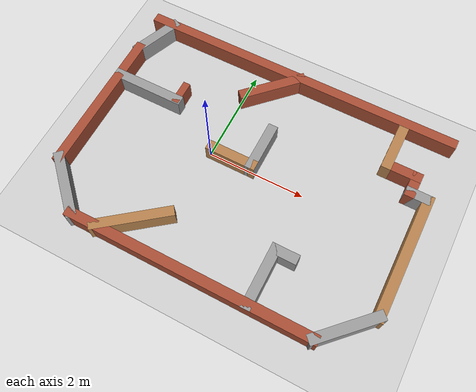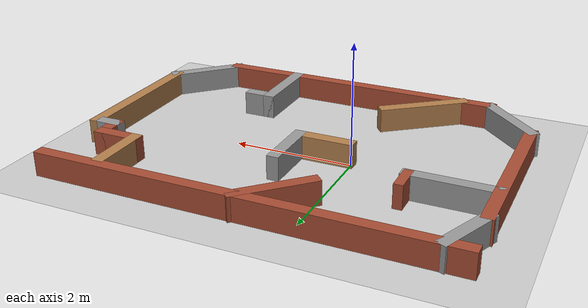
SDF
<sdf version="1.7">
 <world name="default">
  <light name="sun" type="directional">
   <pose>0 0 10 0 -0 0</pose>
   <diffuse>0.8 0.8 0.8 1</diffuse>
   <specular>0.2 0.2 0.2 1</specular>
   <attenuation>
    <range>1000</range>
    <constant>0.9</constant>
    <linear>0.01</linear>
    <quadratic>0.001</quadratic>
   </attenuation>
   <direction>-0.5 0.1 -0.9</direction>
   <spot><inner_angle>0</inner_angle><outer_angle>0</outer_angle><falloff>0</falloff></spot>
  </light>
  <model name="ground_plane">
   <static>1</static>
   <link name="link">
    <collision name="collision">
     <geometry><plane><normal>0 0 1</normal><size>100 100</size></plane></geometry>
     <surface>
      <contact><collide_bitmask>65535</collide_bitmask></contact>
      <friction><ode><mu>100</mu><mu2>50</mu2></ode></friction>
     </surface>
    </collision>
    <visual name="visual">
     <cast_shadows>0</cast_shadows>
     <geometry><plane><normal>0 0 1</normal><size>100 100</size></plane></geometry>
     <material>
      <script><uri>file://media/materials/scripts/gazebo.material</uri><name>Gazebo/Grey</name></script>
     </material>
    </visual>
   </link>
  </model>
  <gravity>0 0 -9.8</gravity>
  <magnetic_field>6e-06 2.3e-05 -4.2e-05</magnetic_field>
  <atmosphere type="adiabatic"/>
  <physics type="ode">
   <max_step_size>0.001</max_step_size>
   <real_time_factor>1</real_time_factor>
   <real_time_update_rate>0.0</real_time_update_rate>
   <max_step_size>0.003</max_step_size>
   <ode>
    <solver>
     <type>quick</type>
     <iters>150</iters>
     <precon_iters>0</precon_iters>
     <sor>1.400000</sor>
     <use_dynamic_moi_rescaling>1</use_dynamic_moi_rescaling>
    </solver>
    <constraints>
     <cfm>0.00001</cfm>
     <erp>0.2</erp>
     <contact_max_correcting_vel>2000.000000</contact_max_correcting_vel>
     <contact_surface_layer>0.01000</contact_surface_layer>
    </constraints>
   </ode>
  </physics>
  <scene><ambient>0.4 0.4 0.4 1</ambient><background>0.7 0.7 0.7 1</background><shadows>1</shadows></scene>
  <spherical_coordinates>
   <surface_model>EARTH_WGS84</surface_model>
   <latitude_deg>0</latitude_deg>
   <longitude_deg>0</longitude_deg>
   <elevation>0</elevation>
   <heading_deg>0</heading_deg>
  </spherical_coordinates>
  <model name="tie23_4">
   <pose>0.849589 -0.096676 0 0 -0 0</pose>
   <link name="Wall_13">
    <collision name="Wall_13_Collision">
     <geometry><box><size>1.11924 0.2 0.4</size></box></geometry>
     <pose>0 0 0.2 0 -0 0</pose>
    </collision>
    <visual name="Wall_13_Visual">
     <pose>0 0 0.2 0 -0 0</pose>
     <geometry><box><size>1.11924 0.2 0.4</size></box></geometry>
     <material>
      <script><uri>file://media/materials/scripts/gazebo.material</uri><name>Gazebo/Grey</name></script>
      <ambient>1 1 1 1</ambient>
     </material>
     <meta><layer>0</layer></meta>
    </visual>
    <pose>-3.125 1.875 0 0 -0 -1.9614</pose>
   </link>
   <link name="Wall_16">
    <collision name="Wall_16_Collision">
     <geometry><box><size>1.55 0.2 0.4</size></box></geometry>
     <pose>0 0 0.2 0 -0 0</pose>
    </collision>
    <visual name="Wall_16_Visual">
     <pose>0 0 0.2 0 -0 0</pose>
     <geometry><box><size>1.55 0.2 0.4</size></box></geometry>
     <material>
      <script><uri>file://media/materials/scripts/gazebo.material</uri><name>Gazebo/Grey</name></script>
      <ambient>1 1 1 1</ambient>
     </material>
     <meta><layer>0</layer></meta>
    </visual>
    <pose>-2.625 0.7 0 0 -0 0</pose>
   </link>
   <link name="Wall_17">
    <collision name="Wall_17_Collision">
     <geometry><box><size>0.5 0.15 0.4</size></box></geometry>
     <pose>0 0 0.2 0 -0 0</pose>
    </collision>
    <visual name="Wall_17_Visual">
     <pose>0 0 0.2 0 -0 0</pose>
     <geometry><box><size>0.5 0.15 0.4</size></box></geometry>
     <material>
      <script><uri>file://media/materials/scripts/gazebo.material</uri><name>Gazebo/Bricks</name></script>
      <ambient>1 1 1 1</ambient>
     </material>
     <meta><layer>0</layer></meta>
    </visual>
    <pose>-1.95 0.875 0 0 -0 1.5708</pose>
   </link>
   <link name="Wall_2">
    <collision name="Wall_2_Collision">
     <geometry><box><size>6.8 0.2 0.4</size></box></geometry>
     <pose>0 0 0.2 0 -0 0</pose>
    </collision>
    <visual name="Wall_2_Visual">
     <pose>0 0 0.2 0 -0 0</pose>
     <geometry><box><size>6.8 0.2 0.4</size></box></geometry>
     <material>
      <script><uri>file://media/materials/scripts/gazebo.material</uri><name>Gazebo/Bricks</name></script>
      <ambient>1 1 1 1</ambient>
     </material>
     <meta><layer>0</layer></meta>
    </visual>
    <pose>-0 2.3 0 0 -0 3.14159</pose>
   </link>
   <link name="Wall_22">
    <collision name="Wall_22_Collision">
     <geometry><box><size>1.40208 0.2 0.4</size></box></geometry>
     <pose>0 0 0.2 0 -0 0</pose>
    </collision>
    <visual name="Wall_22_Visual">
     <pose>0 0 0.2 0 -0 0</pose>
     <geometry><box><size>1.40208 0.2 0.4</size></box></geometry>
     <material>
      <script><uri>file://media/materials/scripts/gazebo.material</uri><name>Gazebo/Bricks</name></script>
      <ambient>1 1 1 1</ambient>
     </material>
     <meta><layer>0</layer></meta>
    </visual>
    <pose>-0.375 1.875 0 0 -0 0.785398</pose>
   </link>
   <link name="Wall_27">
    <collision name="Wall_27_Collision">
     <geometry><box><size>1.59014 0.2 0.4</size></box></geometry>
     <pose>0 0 0.2 0 -0 0</pose>
    </collision>
    <visual name="Wall_27_Visual">
     <pose>0 0 0.2 0 -0 0</pose>
     <geometry><box><size>1.59014 0.2 0.4</size></box></geometry>
     <material>
      <script><uri>file://media/materials/scripts/gazebo.material</uri><name>Gazebo/Wood</name></script>
      <ambient>1 1 1 1</ambient>
     </material>
     <meta><layer>0</layer></meta>
    </visual>
    <pose>-1.4 -1.875 0 0 -0 -2.4837</pose>
   </link>
   <link name="Wall_32">
    <collision name="Wall_32_Collision">
     <geometry><box><size>1.40208 0.2 0.4</size></box></geometry>
     <pose>0 0 0.2 0 -0 0</pose>
    </collision>
    <visual name="Wall_32_Visual">
     <pose>0 0 0.2 0 -0 0</pose>
     <geometry><box><size>1.40208 0.2 0.4</size></box></geometry>
     <material>
      <script><uri>file://media/materials/scripts/gazebo.material</uri><name>Gazebo/Grey</name></script>
      <ambient>1 1 1 1</ambient>
     </material>
     <meta><layer>0</layer></meta>
    </visual>
    <pose>2.875 -1.875 0 0 -0 -2.35619</pose>
   </link>
   <link name="Wall_35">
    <collision name="Wall_35_Collision">
     <geometry><box><size>1.3 0.2 0.4</size></box></geometry>
     <pose>0 0 0.2 0 -0 0</pose>
    </collision>
    <visual name="Wall_35_Visual">
     <pose>0 0 0.2 0 -0 0</pose>
     <geometry><box><size>1.3 0.2 0.4</size></box></geometry>
     <material>
      <script><uri>file://media/materials/scripts/gazebo.material</uri><name>Gazebo/Grey</name></script>
      <ambient>1 1 1 1</ambient>
     </material>
     <meta><layer>0</layer></meta>
    </visual>
    <pose>1.2 -1.75 0 0 -0 1.5708</pose>
   </link>
   <link name="Wall_36">
    <collision name="Wall_36_Collision">
     <geometry><box><size>0.55 0.2 0.4</size></box></geometry>
     <pose>0 0 0.2 0 -0 0</pose>
    </collision>
    <visual name="Wall_36_Visual">
     <pose>0 0 0.2 0 -0 0</pose>
     <geometry><box><size>0.55 0.2 0.4</size></box></geometry>
     <material>
      <script><uri>file://media/materials/scripts/gazebo.material</uri><name>Gazebo/Grey</name></script>
      <ambient>1 1 1 1</ambient>
     </material>
     <meta><layer>0</layer></meta>
    </visual>
    <pose>1.375 -1.2 0 0 -0 0</pose>
   </link>
   <link name="Wall_41">
    <collision name="Wall_41_Collision">
     <geometry><box><size>0.55 0.2 0.4</size></box></geometry>
     <pose>0 0 0.2 0 -0 0</pose>
    </collision>
    <visual name="Wall_41_Visual">
     <pose>0 0 0.2 0 -0 0</pose>
     <geometry><box><size>0.55 0.2 0.4</size></box></geometry>
     <material>
      <script><uri>file://media/materials/scripts/gazebo.material</uri><name>Gazebo/Grey</name></script>
      <ambient>1 1 1 1</ambient>
     </material>
     <meta><layer>0</layer></meta>
    </visual>
    <pose>3.125 0.95 0 0 -0 3.14159</pose>
   </link>
   <link name="Wall_42">
    <collision name="Wall_42_Collision">
     <geometry><box><size>0.55 0.2 0.4</size></box></geometry>
     <pose>0 0 0.2 0 -0 0</pose>
    </collision>
    <visual name="Wall_42_Visual">
     <pose>0 0 0.2 0 -0 0</pose>
     <geometry><box><size>0.55 0.2 0.4</size></box></geometry>
     <material>
      <script><uri>file://media/materials/scripts/gazebo.material</uri><name>Gazebo/Bricks</name></script>
      <ambient>1 1 1 1</ambient>
     </material>
     <meta><layer>0</layer></meta>
    </visual>
    <pose>2.95 1.125 0 0 -0 1.5708</pose>
   </link>
   <link name="Wall_47">
    <collision name="Wall_47_Collision">
     <geometry><box><size>1.05 0.2 0.4</size></box></geometry>
     <pose>0 0 0.2 0 -0 0</pose>
    </collision>
    <visual name="Wall_47_Visual">
     <pose>0 0 0.2 0 -0 0</pose>
     <geometry><box><size>1.05 0.2 0.4</size></box></geometry>
     <material>
      <script><uri>file://media/materials/scripts/gazebo.material</uri><name>Gazebo/Wood</name></script>
      <ambient>1 1 1 1</ambient>
     </material>
     <meta><layer>0</layer></meta>
    </visual>
    <pose>-0.375 0.1 0 0 -0 0</pose>
   </link>
   <link name="Wall_48">
    <collision name="Wall_48_Collision">
     <geometry><box><size>1.05 0.2 0.4</size></box></geometry>
     <pose>0 0 0.2 0 -0 0</pose>
    </collision>
    <visual name="Wall_48_Visual">
     <pose>0 0 0.2 0 -0 0</pose>
     <geometry><box><size>1.05 0.2 0.4</size></box></geometry>
     <material>
      <script><uri>file://media/materials/scripts/gazebo.material</uri><name>Gazebo/Grey</name></script>
      <ambient>1 1 1 1</ambient>
     </material>
     <meta><layer>0</layer></meta>
    </visual>
    <pose>0.05 0.525 0 0 -0 1.5708</pose>
   </link>
   <link name="Wall_57">
    <collision name="Wall_57_Collision">
     <geometry><box><size>2.6 0.2 0.4</size></box></geometry>
     <pose>0 0 0.2 0 -0 0</pose>
    </collision>
    <visual name="Wall_57_Visual">
     <pose>0 0 0.2 0 -0 0</pose>
     <geometry><box><size>2.6 0.2 0.4</size></box></geometry>
     <material>
      <script><uri>file://media/materials/scripts/gazebo.material</uri><name>Gazebo/Wood</name></script>
      <ambient>1 1 1 1</ambient>
     </material>
     <meta><layer>0</layer></meta>
    </visual>
    <pose>3.3 -0.25 0 0 -0 1.5708</pose>
   </link>
   <link name="Wall_66">
    <collision name="Wall_66_Collision">
     <geometry><box><size>0.8 0.2 0.4</size></box></geometry>
     <pose>0 0 0.2 0 -0 0</pose>
    </collision>
    <visual name="Wall_66_Visual">
     <pose>0 0 0.2 0 -0 0</pose>
     <geometry><box><size>0.8 0.2 0.4</size></box></geometry>
     <material>
      <script><uri>file://media/materials/scripts/gazebo.material</uri><name>Gazebo/Bricks</name></script>
      <ambient>1 1 1 1</ambient>
     </material>
     <meta><layer>0</layer></meta>
    </visual>
    <pose>2.65 1.3 0 0 -0 3.14159</pose>
   </link>
   <link name="Wall_67">
    <collision name="Wall_67_Collision">
     <geometry><box><size>1.05 0.2 0.4</size></box></geometry>
     <pose>0 0 0.2 0 -0 0</pose>
    </collision>
    <visual name="Wall_67_Visual">
     <pose>0 0 0.2 0 -0 0</pose>
     <geometry><box><size>1.05 0.2 0.4</size></box></geometry>
     <material>
      <script><uri>file://media/materials/scripts/gazebo.material</uri><name>Gazebo/Wood</name></script>
      <ambient>1 1 1 1</ambient>
     </material>
     <meta><layer>0</layer></meta>
    </visual>
    <pose>2.35 1.725 0 0 -0 1.5708</pose>
   </link>
   <link name="Wall_69">
    <collision name="Wall_69_Collision">
     <geometry><box><size>5.1 0.2 0.4</size></box></geometry>
     <pose>0 0 0.2 0 -0 0</pose>
    </collision>
    <visual name="Wall_69_Visual">
     <pose>0 0 0.2 0 -0 0</pose>
     <geometry><box><size>5.1 0.2 0.4</size></box></geometry>
     <material>
      <script><uri>file://media/materials/scripts/gazebo.material</uri><name>Gazebo/Bricks</name></script>
      <ambient>1 1 1 1</ambient>
     </material>
     <meta><layer>0</layer></meta>
    </visual>
    <pose>-0 -2.3 0 0 -0 3.14159</pose>
   </link>
   <link name="Wall_73">
    <collision name="Wall_73_Collision">
     <geometry><box><size>3.1 0.2 0.4</size></box></geometry>
     <pose>0 0 0.2 0 -0 0</pose>
    </collision>
    <visual name="Wall_73_Visual">
     <pose>0 0 0.2 0 -0 0</pose>
     <geometry><box><size>3.1 0.2 0.4</size></box></geometry>
     <material>
      <script><uri>file://media/materials/scripts/gazebo.material</uri><name>Gazebo/Bricks</name></script>
      <ambient>1 1 1 1</ambient>
     </material>
     <meta><layer>0</layer></meta>
    </visual>
    <pose>-3.3 0 0 0 -0 1.5708</pose>
   </link>
   <link name="Wall_8">
    <collision name="Wall_8_Collision">
     <geometry><box><size>1.40208 0.2 0.4</size></box></geometry>
     <pose>0 0 0.2 0 -0 0</pose>
    </collision>
    <visual name="Wall_8_Visual">
     <pose>0 0 0.2 0 -0 0</pose>
     <geometry><box><size>1.40208 0.2 0.4</size></box></geometry>
     <material>
      <script><uri>file://media/materials/scripts/gazebo.material</uri><name>Gazebo/Grey</name></script>
      <ambient>1 1 1 1</ambient>
     </material>
     <meta><layer>0</layer></meta>
    </visual>
    <pose>-2.875 -1.875 0 0 -0 2.35619</pose>
   </link>
   <static>1</static>
  </model>
 </world>
</sdf>
